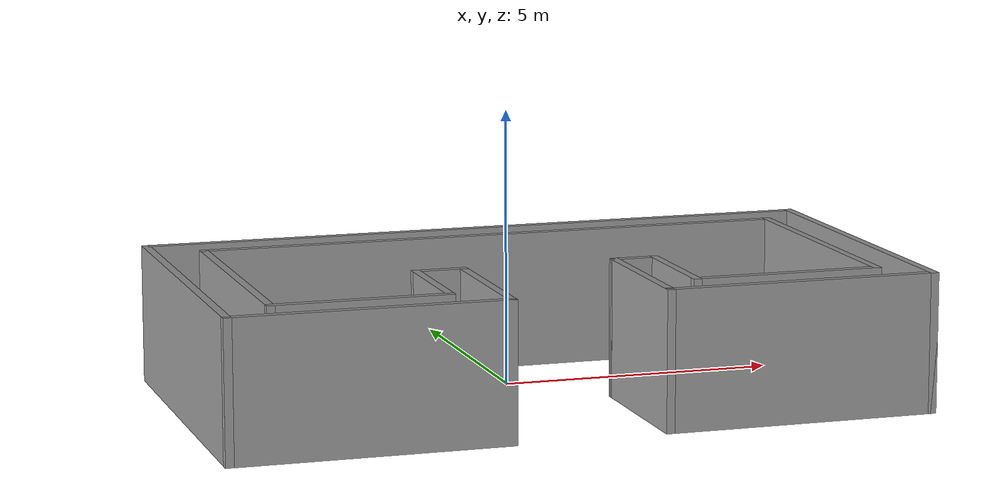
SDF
<?xml version='1.0'?>
<sdf version='1.7'>
  <model name='ushape'>
    <pose>0.130953 -1.09568 0 0 -0 0</pose>
    <link name='Wall_10'>
      <collision name='Wall_10_Collision'>
        <geometry>
          <box>
            <size>3 0.15 2.5</size>
          </box>
        </geometry>
        <pose>0 0 1.25 0 -0 0</pose>
      </collision>
      <visual name='Wall_10_Visual'>
        <pose>0 0 1.25 0 -0 0</pose>
        <geometry>
          <box>
            <size>3 0.15 2.5</size>
          </box>
        </geometry>
        <material>
          <script>
            <uri>file://media/materials/scripts/gazebo.material</uri>
            <name>Gazebo/Grey</name>
          </script>
          <ambient>1 1 1 1</ambient>
        </material>
        <meta>
          <layer>0</layer>
        </meta>
      </visual>
      <pose>1.40095 -1.87068 0 0 -0 -1.5708</pose>
    </link>
    <link name='Wall_13'>
      <collision name='Wall_13_Collision'>
        <geometry>
          <box>
            <size>5 0.15 2.5</size>
          </box>
        </geometry>
        <pose>0 0 1.25 0 -0 0</pose>
      </collision>
      <visual name='Wall_13_Visual'>
        <pose>0 0 1.25 0 -0 0</pose>
        <geometry>
          <box>
            <size>5 0.15 2.5</size>
          </box>
        </geometry>
        <material>
          <script>
            <uri>file://media/materials/scripts/gazebo.material</uri>
            <name>Gazebo/Grey</name>
          </script>
          <ambient>1 1 1 1</ambient>
        </material>
        <meta>
          <layer>0</layer>
        </meta>
      </visual>
      <pose>3.82595 -3.29568 0 0 -0 0</pose>
    </link>
    <link name='Wall_14'>
      <collision name='Wall_14_Collision'>
        <geometry>
          <box>
            <size>6.75 0.15 2.5</size>
          </box>
        </geometry>
        <pose>0 0 1.25 0 -0 0</pose>
      </collision>
      <visual name='Wall_14_Visual'>
        <pose>0 0 1.25 0 -0 0</pose>
        <geometry>
          <box>
            <size>6.75 0.15 2.5</size>
          </box>
        </geometry>
        <material>
          <script>
            <uri>file://media/materials/scripts/gazebo.material</uri>
            <name>Gazebo/Grey</name>
          </script>
          <ambient>1 1 1 1</ambient>
        </material>
        <meta>
          <layer>0</layer>
        </meta>
      </visual>
      <pose>6.25095 0.004322 0 0 -0 1.5708</pose>
    </link>
    <link name='Wall_16'>
      <collision name='Wall_16_Collision'>
        <geometry>
          <box>
            <size>1 0.15 2.5</size>
          </box>
        </geometry>
        <pose>0 0 1.25 0 -0 0</pose>
      </collision>
      <visual name='Wall_16_Visual'>
        <pose>0 0 1.25 0 -0 0</pose>
        <geometry>
          <box>
            <size>1 0.15 2.5</size>
          </box>
        </geometry>
        <material>
          <script>
            <uri>file://media/materials/scripts/gazebo.material</uri>
            <name>Gazebo/Grey</name>
          </script>
          <ambient>1 1 1 1</ambient>
        </material>
        <meta>
          <layer>0</layer>
        </meta>
      </visual>
      <pose>-1.82595 -0.454322 0 0 -0 3.14159</pose>
    </link>
    <link name='Wall_18'>
      <collision name='Wall_18_Collision'>
        <geometry>
          <box>
            <size>2.25 0.15 2.5</size>
          </box>
        </geometry>
        <pose>0 0 1.25 0 -0 0</pose>
      </collision>
      <visual name='Wall_18_Visual'>
        <pose>0 0 1.25 0 -0 0</pose>
        <geometry>
          <box>
            <size>2.25 0.15 2.5</size>
          </box>
        </geometry>
        <material>
          <script>
            <uri>file://media/materials/scripts/gazebo.material</uri>
            <name>Gazebo/Grey</name>
          </script>
          <ambient>1 1 1 1</ambient>
        </material>
        <meta>
          <layer>0</layer>
        </meta>
      </visual>
      <pose>-2.25095 -1.50432 0 0 -0 -1.5708</pose>
    </link>
    <link name='Wall_19'>
      <collision name='Wall_19_Collision'>
        <geometry>
          <box>
            <size>3.25 0.15 2.5</size>
          </box>
        </geometry>
        <pose>0 0 1.25 0 -0 0</pose>
      </collision>
      <visual name='Wall_19_Visual'>
        <pose>0 0 1.25 0 -0 0</pose>
        <geometry>
          <box>
            <size>3.25 0.15 2.5</size>
          </box>
        </geometry>
        <material>
          <script>
            <uri>file://media/materials/scripts/gazebo.material</uri>
            <name>Gazebo/Grey</name>
          </script>
          <ambient>1 1 1 1</ambient>
        </material>
        <meta>
          <layer>0</layer>
        </meta>
      </visual>
      <pose>-3.80095 -2.55432 0 0 -0 3.14159</pose>
    </link>
    <link name='Wall_2'>
      <collision name='Wall_2_Collision'>
        <geometry>
          <box>
            <size>3 0.15 2.5</size>
          </box>
        </geometry>
        <pose>0 0 1.25 0 -0 0</pose>
      </collision>
      <visual name='Wall_2_Visual'>
        <pose>0 0 1.25 0 -0 0</pose>
        <geometry>
          <box>
            <size>3 0.15 2.5</size>
          </box>
        </geometry>
        <material>
          <script>
            <uri>file://media/materials/scripts/gazebo.material</uri>
            <name>Gazebo/Grey</name>
          </script>
          <ambient>1 1 1 1</ambient>
        </material>
        <meta>
          <layer>0</layer>
        </meta>
      </visual>
      <pose>-1.40095 -1.87932 0 0 -0 -1.5708</pose>
    </link>
    <link name='Wall_20'>
      <collision name='Wall_20_Collision'>
        <geometry>
          <box>
            <size>5.25 0.15 2.5</size>
          </box>
        </geometry>
        <pose>0 0 1.25 0 -0 0</pose>
      </collision>
      <visual name='Wall_20_Visual'>
        <pose>0 0 1.25 0 -0 0</pose>
        <geometry>
          <box>
            <size>5.25 0.15 2.5</size>
          </box>
        </geometry>
        <material>
          <script>
            <uri>file://media/materials/scripts/gazebo.material</uri>
            <name>Gazebo/Grey</name>
          </script>
          <ambient>1 1 1 1</ambient>
        </material>
        <meta>
          <layer>0</layer>
        </meta>
      </visual>
      <pose>-5.35095 -0.004322 0 0 -0 1.5708</pose>
    </link>
    <link name='Wall_21'>
      <collision name='Wall_21_Collision'>
        <geometry>
          <box>
            <size>11 0.15 2.5</size>
          </box>
        </geometry>
        <pose>0 0 1.25 0 -0 0</pose>
      </collision>
      <visual name='Wall_21_Visual'>
        <pose>0 0 1.25 0 -0 0</pose>
        <geometry>
          <box>
            <size>11 0.15 2.5</size>
          </box>
        </geometry>
        <material>
          <script>
            <uri>file://media/materials/scripts/gazebo.material</uri>
            <name>Gazebo/Grey</name>
          </script>
          <ambient>1 1 1 1</ambient>
        </material>
        <meta>
          <layer>0</layer>
        </meta>
      </visual>
      <pose>0.074047 2.54568 0 0 -0 0</pose>
    </link>
    <link name='Wall_22'>
      <collision name='Wall_22_Collision'>
        <geometry>
          <box>
            <size>5.25 0.15 2.5</size>
          </box>
        </geometry>
        <pose>0 0 1.25 0 -0 0</pose>
      </collision>
      <visual name='Wall_22_Visual'>
        <pose>0 0 1.25 0 -0 0</pose>
        <geometry>
          <box>
            <size>5.25 0.15 2.5</size>
          </box>
        </geometry>
        <material>
          <script>
            <uri>file://media/materials/scripts/gazebo.material</uri>
            <name>Gazebo/Grey</name>
          </script>
          <ambient>1 1 1 1</ambient>
        </material>
        <meta>
          <layer>0</layer>
        </meta>
      </visual>
      <pose>5.49905 -0.004322 0 0 -0 -1.5708</pose>
    </link>
    <link name='Wall_23'>
      <collision name='Wall_23_Collision'>
        <geometry>
          <box>
            <size>3.5 0.15 2.5</size>
          </box>
        </geometry>
        <pose>0 0 1.25 0 -0 0</pose>
      </collision>
      <visual name='Wall_23_Visual'>
        <pose>0 0 1.25 0 -0 0</pose>
        <geometry>
          <box>
            <size>3.5 0.15 2.5</size>
          </box>
        </geometry>
        <material>
          <script>
            <uri>file://media/materials/scripts/gazebo.material</uri>
            <name>Gazebo/Grey</name>
          </script>
          <ambient>1 1 1 1</ambient>
        </material>
        <meta>
          <layer>0</layer>
        </meta>
      </visual>
      <pose>3.82405 -2.55432 0 0 -0 3.14159</pose>
    </link>
    <link name='Wall_24'>
      <collision name='Wall_24_Collision'>
        <geometry>
          <box>
            <size>2.25 0.15 2.5</size>
          </box>
        </geometry>
        <pose>0 0 1.25 0 -0 0</pose>
      </collision>
      <visual name='Wall_24_Visual'>
        <pose>0 0 1.25 0 -0 0</pose>
        <geometry>
          <box>
            <size>2.25 0.15 2.5</size>
          </box>
        </geometry>
        <material>
          <script>
            <uri>file://media/materials/scripts/gazebo.material</uri>
            <name>Gazebo/Grey</name>
          </script>
          <ambient>1 1 1 1</ambient>
        </material>
        <meta>
          <layer>0</layer>
        </meta>
      </visual>
      <pose>2.14905 -1.50432 0 0 -0 1.5708</pose>
    </link>
    <link name='Wall_25'>
      <collision name='Wall_25_Collision'>
        <geometry>
          <box>
            <size>0.898144 0.15 2.5</size>
          </box>
        </geometry>
        <pose>0 0 1.25 0 -0 0</pose>
      </collision>
      <visual name='Wall_25_Visual'>
        <pose>0 0 1.25 0 -0 0</pose>
        <geometry>
          <box>
            <size>0.898144 0.15 2.5</size>
          </box>
        </geometry>
        <material>
          <script>
            <uri>file://media/materials/scripts/gazebo.material</uri>
            <name>Gazebo/Grey</name>
          </script>
          <ambient>1 1 1 1</ambient>
        </material>
        <meta>
          <layer>0</layer>
        </meta>
      </visual>
      <pose>1.775 -0.45 0 0 -0 3.13004</pose>
    </link>
    <link name='Wall_3'>
      <collision name='Wall_3_Collision'>
        <geometry>
          <box>
            <size>5 0.15 2.5</size>
          </box>
        </geometry>
        <pose>0 0 1.25 0 -0 0</pose>
      </collision>
      <visual name='Wall_3_Visual'>
        <pose>0 0 1.25 0 -0 0</pose>
        <geometry>
          <box>
            <size>5 0.15 2.5</size>
          </box>
        </geometry>
        <material>
          <script>
            <uri>file://media/materials/scripts/gazebo.material</uri>
            <name>Gazebo/Grey</name>
          </script>
          <ambient>1 1 1 1</ambient>
        </material>
        <meta>
          <layer>0</layer>
        </meta>
      </visual>
      <pose>-3.82595 -3.30432 0 0 -0 3.14159</pose>
    </link>
    <link name='Wall_5'>
      <collision name='Wall_5_Collision'>
        <geometry>
          <box>
            <size>6.75 0.15 2.5</size>
          </box>
        </geometry>
        <pose>0 0 1.25 0 -0 0</pose>
      </collision>
      <visual name='Wall_5_Visual'>
        <pose>0 0 1.25 0 -0 0</pose>
        <geometry>
          <box>
            <size>6.75 0.15 2.5</size>
          </box>
        </geometry>
        <material>
          <script>
            <uri>file://media/materials/scripts/gazebo.material</uri>
            <name>Gazebo/Grey</name>
          </script>
          <ambient>1 1 1 1</ambient>
        </material>
        <meta>
          <layer>0</layer>
        </meta>
      </visual>
      <pose>-6.25095 -0.004322 0 0 -0 1.5708</pose>
    </link>
    <link name='Wall_6'>
      <collision name='Wall_6_Collision'>
        <geometry>
          <box>
            <size>12.5 0.15 2.5</size>
          </box>
        </geometry>
        <pose>0 0 1.25 0 -0 0</pose>
      </collision>
      <visual name='Wall_6_Visual'>
        <pose>0 0 1.25 0 -0 0</pose>
        <geometry>
          <box>
            <size>12.5 0.15 2.5</size>
          </box>
        </geometry>
        <material>
          <script>
            <uri>file://media/materials/scripts/gazebo.material</uri>
            <name>Gazebo/Grey</name>
          </script>
          <ambient>1 1 1 1</ambient>
        </material>
        <meta>
          <layer>0</layer>
        </meta>
      </visual>
      <pose>-0.075953 3.29568 0 0 -0 0</pose>
    </link>
    <static>1</static>
  </model>
</sdf>
